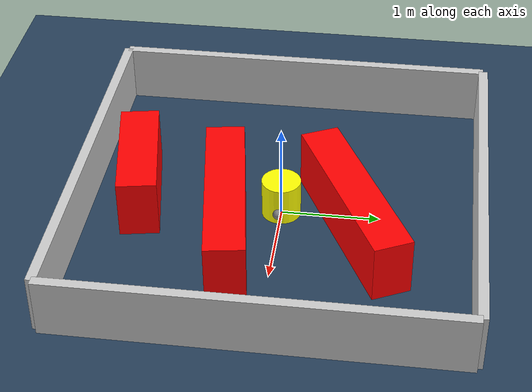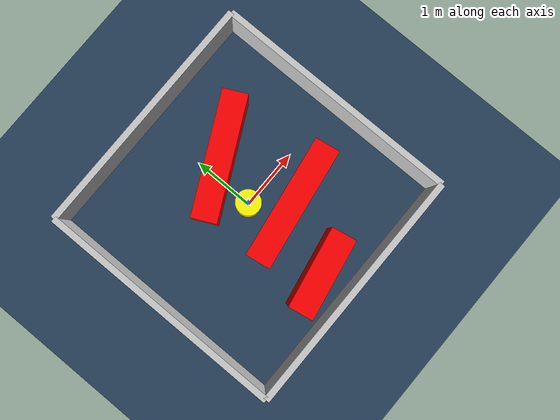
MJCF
<?xml version="1.0" ?>
<mujoco model="generated_environment">
  <option timestep="0.01" integrator="RK4" cone="elliptic"/>
  <default>
    <geom density="1"/>
  </default>
  <asset>
    <texture builtin="gradient" height="3072" rgb1="0.3 0.5 0.7" rgb2="0 0 0" type="skybox" width="512"/>
    <texture builtin="checker" height="300" mark="edge" markrgb="0.8 0.8 0.8" name="groundplane" rgb1="0.2 0.3 0.4" rgb2="0.1 0.2 0.3" type="2d" width="300"/>
    <material name="groundplane" reflectance="0.2" texrepeat="5 5" texture="groundplane" texuniform="true"/>
    <material name="robot" rgba="0.0 1.0 0.0 1"/>
  </asset>
  <worldbody>
    <light dir="0 0 -1" directional="true" pos="0 0 1.5"/>
    <geom condim="4" friction="1.0 0.005 0.001" material="groundplane" name="floor" size="0 0 0.05" type="plane"/>
    <body name="walls">
      <geom name="wall_1" condim="4" pos="-2.0 0.0 0.3" rgba="0.800000011920929 0.800000011920929 0.800000011920929 1.0" size="0.05 2.0 0.3" type="box"/>
      <geom name="wall_2" condim="4" pos="2.0 0.0 0.3" rgba="0.800000011920929 0.800000011920929 0.800000011920929 1.0" size="0.05 2.0 0.3" type="box"/>
      <geom name="wall_3" condim="4" pos="0.0 -2.0 0.3" rgba="0.800000011920929 0.800000011920929 0.800000011920929 1.0" size="2.0 0.05 0.3" type="box"/>
      <geom name="wall_4" condim="4" pos="0.0 2.0 0.3" rgba="0.800000011920929 0.800000011920929 0.800000011920929 1.0" size="2.0 0.05 0.3" type="box"/>
    </body>
    <body name="robot">
      <joint name="joint_x" type="slide" pos="0 0 0" axis="1 0 0"/>
      <joint name="joint_y" type="slide" pos="0 0 0" axis="0 1 0"/>
      <geom name="robot" type="sphere" pos="0.3 0.0 0.2" size="0.05" mass="5." friction="1.0 0.005 0.0001" condim="4" rgba="0.5 0.5 0.5 1.0"/>
      <site name="sensor_ball"/>
    </body>
    <body name="obstacle_movable_1">
      <geom name="obstacle_movable_1" condim="4" pos="0.0 0.0 0.2" euler="0 0 0.0" friction="1.0 0.005 0.001" rgba="1.0 1.0 0.0 1.0" size="0.2 0.2 0.0" type="cylinder" mass="0.1"/>
      <joint type="free"/>
    </body>
    <body name="obstacle_2_static">
      <geom name="obstacle_2_static" condim="4" pos="0.24727561517120078 0.7534084370578598 0.3" euler="0 0 206.37682270220608" friction="1.0 0.005 0.001" rgba="1 0 0 1" size="0.9840692818646595 0.2 0.3" type="box"/>
    </body>
    <body name="obstacle_3_static">
      <geom name="obstacle_3_static" condim="4" pos="0.398938296281353 -0.5087006244287999 0.3" euler="0 0 188.7587953902752" friction="1.0 0.005 0.001" rgba="1 0 0 1" size="0.9949826250819749 0.2 0.3" type="box"/>
    </body>
    <body name="obstacle_4_static">
      <geom name="obstacle_4_static" condim="4" pos="-0.11437762141099062 -1.4851467966394347 0.3" euler="0 0 10.4470605229087" friction="1.0 0.005 0.001" rgba="1 0 0 1" size="0.6553347302459702 0.2 0.3" type="box"/>
    </body>
  </worldbody>
  <actuator>
    <motor name="actuator_x" joint="joint_x" gear="1" ctrlrange="-1 1"/>
    <motor name="actuator_y" joint="joint_y" gear="1" ctrlrange="-1 1"/>
  </actuator>
</mujoco>
